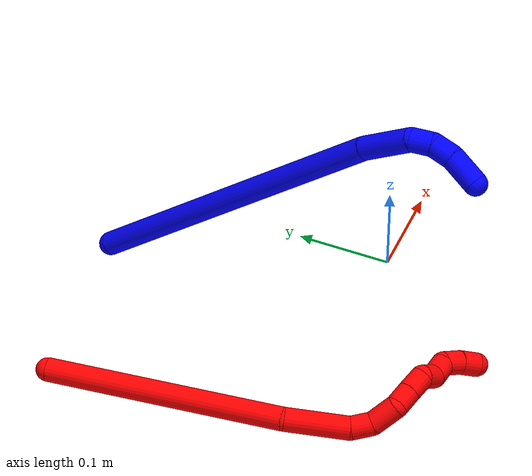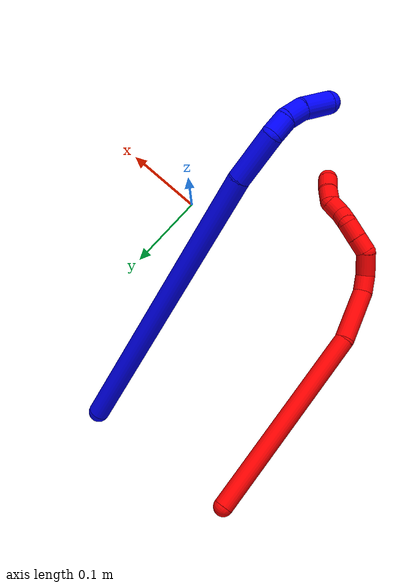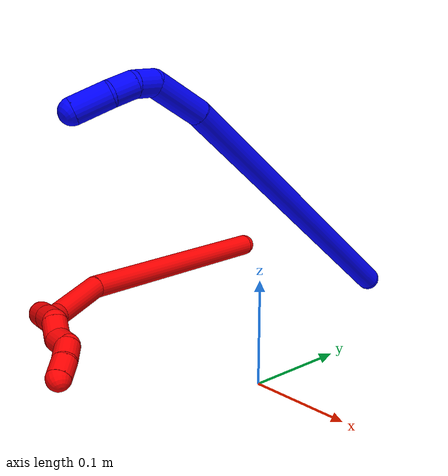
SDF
<sdf version="1.7">
 <world name="default">
  <plugin name="TubeGeneratorPlugin" filename="libtube_generator_plugin.so"/>
  <model name="photoneo_s_sensor">
   <static>1</static>
   <pose>0 0 2 1.57079 1.57079 3.14159</pose>
   <link name="link">
    <inertial><mass>0.1</mass></inertial>
    <sensor name="sensor" type="depth">
     <update_rate>30</update_rate>
     <camera>
      <horizontal_fov>1.22</horizontal_fov>
      <image><width>1920</width><height>1200</height><format>B8G8R8</format></image>
      <clip><near>0.1</near><far>4</far></clip>
      <depth_camera><output>points</output></depth_camera>
     </camera>
     <plugin name="camera_plugin" filename="libgazebo_ros_depth_camera.so">
      <baseline>0.2</baseline>
      <alwaysOn>1</alwaysOn>
      <updateRate>0.0</updateRate>
      <cameraName>camera_ir</cameraName>
      <imageTopicName>/camera/color/image_raw</imageTopicName>
      <cameraInfoTopicName>/camera/color/camera_info</cameraInfoTopicName>
      <depthImageTopicName>/camera/depth/image_raw</depthImageTopicName>
      <depthImageCameraInfoTopicName>/camera/depth/camera_info</depthImageCameraInfoTopicName>
      <pointCloudTopicName>/camera/depth/points</pointCloudTopicName>
      <frameName>fr_optical</frameName>
      <pointCloudCutoff>0.1</pointCloudCutoff>
      <pointCloudCutoffMax>2.0</pointCloudCutoffMax>
      <distortionK1>0</distortionK1>
      <distortionK2>0</distortionK2>
      <distortionK3>0</distortionK3>
      <distortionT1>0</distortionT1>
      <distortionT2>0</distortionT2>
      <CxPrime>0</CxPrime>
      <Cx>0</Cx>
      <Cy>0</Cy>
      <focalLength>0</focalLength>
      <hackBaseline>0</hackBaseline>
     </plugin>
    </sensor>
   </link>
  </model>
  <gravity>0 0 -9.8</gravity>
  <magnetic_field>6e-06 2.3e-05 -4.2e-05</magnetic_field>
  <atmosphere type="adiabatic"/>
  <physics name="default_physics" default="0" type="ode">
   <max_step_size>0.003</max_step_size>
   <real_time_factor>1</real_time_factor>
   <real_time_update_rate>1000</real_time_update_rate>
   <max_contacts>10000</max_contacts>
   <ode>
    <solver>
     <type>quick</type>
     <iters>100</iters>
     <sor>1.3</sor>
     <use_dynamic_moi_rescaling>0</use_dynamic_moi_rescaling>
    </solver>
    <constraints>
     <contact_max_correcting_vel>0</contact_max_correcting_vel>
     <contact_surface_layer>0.001</contact_surface_layer>
     <cfm>0</cfm>
     <erp>0.2</erp>
    </constraints>
   </ode>
  </physics>
  <scene><ambient>0.4 0.4 0.4 1</ambient><background>0.7 0.7 0.7 1</background><shadows>0</shadows></scene>
  <audio><device>default</device></audio>
  <spherical_coordinates>
   <surface_model>EARTH_WGS84</surface_model>
   <latitude_deg>0</latitude_deg>
   <longitude_deg>0</longitude_deg>
   <elevation>0</elevation>
   <heading_deg>0</heading_deg>
  </spherical_coordinates>
  <model name="bin">
   <static>1</static>
   <link name="bottom">
    <collision name="collision-bottom">
     <pose>0 0 -0.01 0 -0 0</pose>
     <geometry><box><size>0.8 0.6 0.02</size></box></geometry>
     <surface>
      <friction><ode><mu>100</mu><mu2>100</mu2></ode></friction>
      <contact><collide_bitmask>65535</collide_bitmask></contact>
     </surface>
    </collision>
   </link>
   <link name="west_wall">
    <collision name="collision-west_wall">
     <pose>-0.41 0 0.1 0 -0 0</pose>
     <geometry><box><size>0.02 0.6 0.2</size></box></geometry>
     <surface>
      <friction><ode><mu>100</mu><mu2>100</mu2></ode></friction>
      <contact><collide_bitmask>65535</collide_bitmask></contact>
     </surface>
    </collision>
   </link>
   <link name="east_wall">
    <collision name="collision-east_wall">
     <pose>0.41 0 0.1 0 -0 0</pose>
     <geometry><box><size>0.02 0.6 0.2</size></box></geometry>
     <surface>
      <friction><ode><mu>100</mu><mu2>100</mu2></ode></friction>
      <contact><collide_bitmask>65535</collide_bitmask></contact>
     </surface>
    </collision>
   </link>
   <link name="south_wall">
    <collision name="collision-south_wall">
     <pose>0 -0.31 0.1 0 -0 0</pose>
     <geometry><box><size>0.8 0.02 0.2</size></box></geometry>
     <surface>
      <friction><ode><mu>100</mu><mu2>100</mu2></ode></friction>
      <contact><collide_bitmask>65535</collide_bitmask></contact>
     </surface>
    </collision>
   </link>
   <link name="north_wall">
    <collision name="collision-north_wall">
     <pose>0 0.31 0.1 0 -0 0</pose>
     <geometry><box><size>0.8 0.02 0.2</size></box></geometry>
     <surface>
      <friction><ode><mu>100</mu><mu2>100</mu2></ode></friction>
      <contact><collide_bitmask>65535</collide_bitmask></contact>
     </surface>
    </collision>
   </link>
  </model>
  <model name="1">
   <static>0</static>
   <link name="1">
    <collision name="collision-cylinder-e_1_1_4">
     <pose>0.020866 -0.168051 -0.061123 1.91964 0.116163 0.165665</pose>
     <geometry><cylinder><radius>0.0125</radius><length>0.36007</length></cylinder></geometry>
     <surface>
      <friction><ode><mu>1.16</mu><mu2>1.16</mu2><slip1>0</slip1><slip2>0</slip2></ode></friction>
      <contact><ode><kp>1e+06</kp><kd>1</kd><max_vel>0</max_vel><min_depth>0.001</min_depth></ode></contact>
     </surface>
    </collision>
    <visual name="visual-cylinder-e_1_1_4">
     <pose>0.020866 -0.168051 -0.061123 1.91964 0.116163 0.165665</pose>
     <geometry><cylinder><radius>0.0125</radius><length>0.36007</length></cylinder></geometry>
     <material><ambient>0 0 1 1</ambient></material>
    </visual>
    <collision name="collision-cylinder-e_2_4_5">
     <pose>0.043336 -0.362275 -0.135834 2.04964 0.054324 0.089373</pose>
     <geometry><cylinder><radius>0.0125</radius><length>0.059068</length></cylinder></geometry>
     <surface>
      <friction><ode><mu>1.16</mu><mu2>1.16</mu2><slip1>0</slip1><slip2>0</slip2></ode></friction>
      <contact><ode><kp>1e+06</kp><kd>1</kd><max_vel>0</max_vel><min_depth>0.001</min_depth></ode></contact>
     </surface>
    </collision>
    <visual name="visual-cylinder-e_2_4_5">
     <pose>0.043336 -0.362275 -0.135834 2.04964 0.054324 0.089373</pose>
     <geometry><cylinder><radius>0.0125</radius><length>0.059068</length></cylinder></geometry>
     <material><ambient>0 0 1 1</ambient></material>
    </visual>
    <collision name="collision-cylinder-e_3_5_6">
     <pose>0.046477 -0.39452 -0.158979 2.57566 0.134891 0.456518</pose>
     <geometry><cylinder><radius>0.0125</radius><length>0.022851</length></cylinder></geometry>
     <surface>
      <friction><ode><mu>1.16</mu><mu2>1.16</mu2><slip1>0</slip1><slip2>0</slip2></ode></friction>
      <contact><ode><kp>1e+06</kp><kd>1</kd><max_vel>0</max_vel><min_depth>0.001</min_depth></ode></contact>
     </surface>
    </collision>
    <visual name="visual-cylinder-e_3_5_6">
     <pose>0.046477 -0.39452 -0.158979 2.57566 0.134891 0.456518</pose>
     <geometry><cylinder><radius>0.0125</radius><length>0.022851</length></cylinder></geometry>
     <material><ambient>0 0 1 1</ambient></material>
    </visual>
    <collision name="collision-cylinder-e_4_6_7">
     <pose>0.047297 -0.403469 -0.179704 2.88936 -0.062021 -0.479888</pose>
     <geometry><cylinder><radius>0.0125</radius><length>0.023111</length></cylinder></geometry>
     <surface>
      <friction><ode><mu>1.16</mu><mu2>1.16</mu2><slip1>0</slip1><slip2>0</slip2></ode></friction>
      <contact><ode><kp>1e+06</kp><kd>1</kd><max_vel>0</max_vel><min_depth>0.001</min_depth></ode></contact>
     </surface>
    </collision>
    <visual name="visual-cylinder-e_4_6_7">
     <pose>0.047297 -0.403469 -0.179704 2.88936 -0.062021 -0.479888</pose>
     <geometry><cylinder><radius>0.0125</radius><length>0.023111</length></cylinder></geometry>
     <material><ambient>0 0 1 1</ambient></material>
    </visual>
    <collision name="collision-cylinder-e_5_7_2">
     <pose>0.041348 -0.408434 -0.207388 3.01592 -0.304559 -2.36344</pose>
     <geometry><cylinder><radius>0.0125</radius><length>0.0349</length></cylinder></geometry>
     <surface>
      <friction><ode><mu>1.16</mu><mu2>1.16</mu2><slip1>0</slip1><slip2>0</slip2></ode></friction>
      <contact><ode><kp>1e+06</kp><kd>1</kd><max_vel>0</max_vel><min_depth>0.001</min_depth></ode></contact>
     </surface>
    </collision>
    <visual name="visual-cylinder-e_5_7_2">
     <pose>0.041348 -0.408434 -0.207388 3.01592 -0.304559 -2.36344</pose>
     <geometry><cylinder><radius>0.0125</radius><length>0.0349</length></cylinder></geometry>
     <material><ambient>0 0 1 1</ambient></material>
    </visual>
    <collision name="collision-sphere-2">
     <pose>0.036115 -0.41052 -0.223903 0 -0 0</pose>
     <geometry><sphere><radius>0.0125</radius></sphere></geometry>
     <surface>
      <friction><ode><mu>1.16</mu><mu2>1.16</mu2><slip1>0</slip1><slip2>0</slip2></ode></friction>
      <contact><ode><kp>1e+06</kp><kd>1</kd><max_vel>0</max_vel><min_depth>0.001</min_depth></ode></contact>
     </surface>
    </collision>
    <visual name="visual-sphere-2">
     <pose>0.036115 -0.41052 -0.223903 0 -0 0</pose>
     <geometry><sphere><radius>0.0125</radius></sphere></geometry>
     <material><ambient>0 0 1 1</ambient></material>
    </visual>
    <collision name="collision-sphere-7">
     <pose>0.046581 -0.406347 -0.190872 0 -0 0</pose>
     <geometry><sphere><radius>0.0125</radius></sphere></geometry>
     <surface>
      <friction><ode><mu>1.16</mu><mu2>1.16</mu2><slip1>0</slip1><slip2>0</slip2></ode></friction>
      <contact><ode><kp>1e+06</kp><kd>1</kd><max_vel>0</max_vel><min_depth>0.001</min_depth></ode></contact>
     </surface>
    </collision>
    <visual name="visual-sphere-7">
     <pose>0.046581 -0.406347 -0.190872 0 -0 0</pose>
     <geometry><sphere><radius>0.0125</radius></sphere></geometry>
     <material><ambient>0 0 1 1</ambient></material>
    </visual>
    <collision name="collision-sphere-6">
     <pose>0.048013 -0.400591 -0.168536 0 -0 0</pose>
     <geometry><sphere><radius>0.0125</radius></sphere></geometry>
     <surface>
      <friction><ode><mu>1.16</mu><mu2>1.16</mu2><slip1>0</slip1><slip2>0</slip2></ode></friction>
      <contact><ode><kp>1e+06</kp><kd>1</kd><max_vel>0</max_vel><min_depth>0.001</min_depth></ode></contact>
     </surface>
    </collision>
    <visual name="visual-sphere-6">
     <pose>0.048013 -0.400591 -0.168536 0 -0 0</pose>
     <geometry><sphere><radius>0.0125</radius></sphere></geometry>
     <material><ambient>0 0 1 1</ambient></material>
    </visual>
    <collision name="collision-sphere-5">
     <pose>0.04494 -0.388449 -0.149422 0 -0 0</pose>
     <geometry><sphere><radius>0.0125</radius></sphere></geometry>
     <surface>
      <friction><ode><mu>1.16</mu><mu2>1.16</mu2><slip1>0</slip1><slip2>0</slip2></ode></friction>
      <contact><ode><kp>1e+06</kp><kd>1</kd><max_vel>0</max_vel><min_depth>0.001</min_depth></ode></contact>
     </surface>
    </collision>
    <visual name="visual-sphere-5">
     <pose>0.04494 -0.388449 -0.149422 0 -0 0</pose>
     <geometry><sphere><radius>0.0125</radius></sphere></geometry>
     <material><ambient>0 0 1 1</ambient></material>
    </visual>
    <collision name="collision-sphere-1">
     <geometry><sphere><radius>0.0125</radius></sphere></geometry>
     <surface>
      <friction><ode><mu>1.16</mu><mu2>1.16</mu2><slip1>0</slip1><slip2>0</slip2></ode></friction>
      <contact><ode><kp>1e+06</kp><kd>1</kd><max_vel>0</max_vel><min_depth>0.001</min_depth></ode></contact>
     </surface>
    </collision>
    <visual name="visual-sphere-1">
     <geometry><sphere><radius>0.0125</radius></sphere></geometry>
     <material><ambient>0 0 1 1</ambient></material>
    </visual>
    <collision name="collision-sphere-4">
     <pose>0.041733 -0.336102 -0.122247 0 -0 0</pose>
     <geometry><sphere><radius>0.0125</radius></sphere></geometry>
     <surface>
      <friction><ode><mu>1.16</mu><mu2>1.16</mu2><slip1>0</slip1><slip2>0</slip2></ode></friction>
      <contact><ode><kp>1e+06</kp><kd>1</kd><max_vel>0</max_vel><min_depth>0.001</min_depth></ode></contact>
     </surface>
    </collision>
    <visual name="visual-sphere-4">
     <pose>0.041733 -0.336102 -0.122247 0 -0 0</pose>
     <geometry><sphere><radius>0.0125</radius></sphere></geometry>
     <material><ambient>0 0 1 1</ambient></material>
    </visual>
    <inertial>
     <pose>0.027343 -0.229006 -0.090112 0 -0 0</pose>
     <mass>0.5</mass>
     <inertia>
      <ixx>0.004485</ixx>
      <ixy>0</ixy>
      <ixz>0</ixz>
      <iyy>-0.000649</iyy>
      <iyz>0</iyz>
      <izz>0.003194</izz>
     </inertia>
    </inertial>
   </link>
   <pose>-0.098301 0.2779 0.011495 -1.04225 0.005956 -0.094429</pose>
  </model>
  <model name="2">
   <static>0</static>
   <link name="2">
    <collision name="collision-cylinder-e_1_1_4">
     <pose>0.079022 -0.089138 0.043017 1.12117 0.673769 0.432846</pose>
     <geometry><cylinder><radius>0.0125</radius><length>0.253302</length></cylinder></geometry>
     <surface>
      <friction><ode><mu>1.16</mu><mu2>1.16</mu2><slip1>0</slip1><slip2>0</slip2></ode></friction>
      <contact><ode><kp>1e+06</kp><kd>1</kd><max_vel>0</max_vel><min_depth>0.001</min_depth></ode></contact>
     </surface>
    </collision>
    <visual name="visual-cylinder-e_1_1_4">
     <pose>0.079022 -0.089138 0.043017 1.12117 0.673769 0.432846</pose>
     <geometry><cylinder><radius>0.0125</radius><length>0.253302</length></cylinder></geometry>
     <material><ambient>1 0 0 1</ambient></material>
    </visual>
    <collision name="collision-cylinder-e_2_4_5">
     <pose>0.175708 -0.199235 0.106694 0.792587 0.540554 0.230828</pose>
     <geometry><cylinder><radius>0.0125</radius><length>0.068648</length></cylinder></geometry>
     <surface>
      <friction><ode><mu>1.16</mu><mu2>1.16</mu2><slip1>0</slip1><slip2>0</slip2></ode></friction>
      <contact><ode><kp>1e+06</kp><kd>1</kd><max_vel>0</max_vel><min_depth>0.001</min_depth></ode></contact>
     </surface>
    </collision>
    <visual name="visual-cylinder-e_2_4_5">
     <pose>0.175708 -0.199235 0.106694 0.792587 0.540554 0.230828</pose>
     <geometry><cylinder><radius>0.0125</radius><length>0.068648</length></cylinder></geometry>
     <material><ambient>1 0 0 1</ambient></material>
    </visual>
    <collision name="collision-cylinder-e_3_5_6">
     <pose>0.195962 -0.229351 0.133919 0.948833 0.225989 0.116418</pose>
     <geometry><cylinder><radius>0.0125</radius><length>0.023122</length></cylinder></geometry>
     <surface>
      <friction><ode><mu>1.16</mu><mu2>1.16</mu2><slip1>0</slip1><slip2>0</slip2></ode></friction>
      <contact><ode><kp>1e+06</kp><kd>1</kd><max_vel>0</max_vel><min_depth>0.001</min_depth></ode></contact>
     </surface>
    </collision>
    <visual name="visual-cylinder-e_3_5_6">
     <pose>0.195962 -0.229351 0.133919 0.948833 0.225989 0.116418</pose>
     <geometry><cylinder><radius>0.0125</radius><length>0.023122</length></cylinder></geometry>
     <material><ambient>1 0 0 1</ambient></material>
    </visual>
    <collision name="collision-cylinder-e_4_6_7">
     <pose>0.196533 -0.252801 0.145084 1.25935 -0.133723 -0.097501</pose>
     <geometry><cylinder><radius>0.0125</radius><length>0.0303</length></cylinder></geometry>
     <surface>
      <friction><ode><mu>1.16</mu><mu2>1.16</mu2><slip1>0</slip1><slip2>0</slip2></ode></friction>
      <contact><ode><kp>1e+06</kp><kd>1</kd><max_vel>0</max_vel><min_depth>0.001</min_depth></ode></contact>
     </surface>
    </collision>
    <visual name="visual-cylinder-e_4_6_7">
     <pose>0.196533 -0.252801 0.145084 1.25935 -0.133723 -0.097501</pose>
     <geometry><cylinder><radius>0.0125</radius><length>0.0303</length></cylinder></geometry>
     <material><ambient>1 0 0 1</ambient></material>
    </visual>
    <collision name="collision-cylinder-e_5_7_8">
     <pose>0.189812 -0.272889 0.157008 0.669576 -0.466309 -0.164852</pose>
     <geometry><cylinder><radius>0.0125</radius><length>0.020909</length></cylinder></geometry>
     <surface>
      <friction><ode><mu>1.16</mu><mu2>1.16</mu2><slip1>0</slip1><slip2>0</slip2></ode></friction>
      <contact><ode><kp>1e+06</kp><kd>1</kd><max_vel>0</max_vel><min_depth>0.001</min_depth></ode></contact>
     </surface>
    </collision>
    <visual name="visual-cylinder-e_5_7_8">
     <pose>0.189812 -0.272889 0.157008 0.669576 -0.466309 -0.164852</pose>
     <geometry><cylinder><radius>0.0125</radius><length>0.020909</length></cylinder></geometry>
     <material><ambient>1 0 0 1</ambient></material>
    </visual>
    <collision name="collision-cylinder-e_6_8_9">
     <pose>0.180254 -0.284907 0.172461 0.653144 -0.443 -0.152252</pose>
     <geometry><cylinder><radius>0.0125</radius><length>0.022667</length></cylinder></geometry>
     <surface>
      <friction><ode><mu>1.16</mu><mu2>1.16</mu2><slip1>0</slip1><slip2>0</slip2></ode></friction>
      <contact><ode><kp>1e+06</kp><kd>1</kd><max_vel>0</max_vel><min_depth>0.001</min_depth></ode></contact>
     </surface>
    </collision>
    <visual name="visual-cylinder-e_6_8_9">
     <pose>0.180254 -0.284907 0.172461 0.653144 -0.443 -0.152252</pose>
     <geometry><cylinder><radius>0.0125</radius><length>0.022667</length></cylinder></geometry>
     <material><ambient>1 0 0 1</ambient></material>
    </visual>
    <collision name="collision-cylinder-e_7_9_10">
     <pose>0.17582 -0.291852 0.19064 0.071838 0.042025 0.00151</pose>
     <geometry><cylinder><radius>0.0125</radius><length>0.020163</length></cylinder></geometry>
     <surface>
      <friction><ode><mu>1.16</mu><mu2>1.16</mu2><slip1>0</slip1><slip2>0</slip2></ode></friction>
      <contact><ode><kp>1e+06</kp><kd>1</kd><max_vel>0</max_vel><min_depth>0.001</min_depth></ode></contact>
     </surface>
    </collision>
    <visual name="visual-cylinder-e_7_9_10">
     <pose>0.17582 -0.291852 0.19064 0.071838 0.042025 0.00151</pose>
     <geometry><cylinder><radius>0.0125</radius><length>0.020163</length></cylinder></geometry>
     <material><ambient>1 0 0 1</ambient></material>
    </visual>
    <collision name="collision-cylinder-e_8_10_11">
     <pose>0.171188 -0.296122 0.208944 0.405706 -0.512392 -0.107654</pose>
     <geometry><cylinder><radius>0.0125</radius><length>0.020623</length></cylinder></geometry>
     <surface>
      <friction><ode><mu>1.16</mu><mu2>1.16</mu2><slip1>0</slip1><slip2>0</slip2></ode></friction>
      <contact><ode><kp>1e+06</kp><kd>1</kd><max_vel>0</max_vel><min_depth>0.001</min_depth></ode></contact>
     </surface>
    </collision>
    <visual name="visual-cylinder-e_8_10_11">
     <pose>0.171188 -0.296122 0.208944 0.405706 -0.512392 -0.107654</pose>
     <geometry><cylinder><radius>0.0125</radius><length>0.020623</length></cylinder></geometry>
     <material><ambient>1 0 0 1</ambient></material>
    </visual>
    <collision name="collision-cylinder-e_9_11_12">
     <pose>0.167995 -0.30357 0.226268 0.406254 0.18657 0.038534</pose>
     <geometry><cylinder><radius>0.0125</radius><length>0.020089</length></cylinder></geometry>
     <surface>
      <friction><ode><mu>1.16</mu><mu2>1.16</mu2><slip1>0</slip1><slip2>0</slip2></ode></friction>
      <contact><ode><kp>1e+06</kp><kd>1</kd><max_vel>0</max_vel><min_depth>0.001</min_depth></ode></contact>
     </surface>
    </collision>
    <visual name="visual-cylinder-e_9_11_12">
     <pose>0.167995 -0.30357 0.226268 0.406254 0.18657 0.038534</pose>
     <geometry><cylinder><radius>0.0125</radius><length>0.020089</length></cylinder></geometry>
     <material><ambient>1 0 0 1</ambient></material>
    </visual>
    <collision name="collision-cylinder-e_10_12_2">
     <pose>0.173348 -0.310722 0.244225 0.350609 0.353141 0.063187</pose>
     <geometry><cylinder><radius>0.0125</radius><length>0.020177</length></cylinder></geometry>
     <surface>
      <friction><ode><mu>1.16</mu><mu2>1.16</mu2><slip1>0</slip1><slip2>0</slip2></ode></friction>
      <contact><ode><kp>1e+06</kp><kd>1</kd><max_vel>0</max_vel><min_depth>0.001</min_depth></ode></contact>
     </surface>
    </collision>
    <visual name="visual-cylinder-e_10_12_2">
     <pose>0.173348 -0.310722 0.244225 0.350609 0.353141 0.063187</pose>
     <geometry><cylinder><radius>0.0125</radius><length>0.020177</length></cylinder></geometry>
     <material><ambient>1 0 0 1</ambient></material>
    </visual>
    <collision name="collision-sphere-2">
     <pose>0.176837 -0.313973 0.253116 0 -0 0</pose>
     <geometry><sphere><radius>0.0125</radius></sphere></geometry>
     <surface>
      <friction><ode><mu>1.16</mu><mu2>1.16</mu2><slip1>0</slip1><slip2>0</slip2></ode></friction>
      <contact><ode><kp>1e+06</kp><kd>1</kd><max_vel>0</max_vel><min_depth>0.001</min_depth></ode></contact>
     </surface>
    </collision>
    <visual name="visual-sphere-2">
     <pose>0.176837 -0.313973 0.253116 0 -0 0</pose>
     <geometry><sphere><radius>0.0125</radius></sphere></geometry>
     <material><ambient>1 0 0 1</ambient></material>
    </visual>
    <collision name="collision-sphere-12">
     <pose>0.169859 -0.30747 0.235335 0 -0 0</pose>
     <geometry><sphere><radius>0.0125</radius></sphere></geometry>
     <surface>
      <friction><ode><mu>1.16</mu><mu2>1.16</mu2><slip1>0</slip1><slip2>0</slip2></ode></friction>
      <contact><ode><kp>1e+06</kp><kd>1</kd><max_vel>0</max_vel><min_depth>0.001</min_depth></ode></contact>
     </surface>
    </collision>
    <visual name="visual-sphere-12">
     <pose>0.169859 -0.30747 0.235335 0 -0 0</pose>
     <geometry><sphere><radius>0.0125</radius></sphere></geometry>
     <material><ambient>1 0 0 1</ambient></material>
    </visual>
    <collision name="collision-sphere-11">
     <pose>0.166132 -0.299669 0.217201 0 -0 0</pose>
     <geometry><sphere><radius>0.0125</radius></sphere></geometry>
     <surface>
      <friction><ode><mu>1.16</mu><mu2>1.16</mu2><slip1>0</slip1><slip2>0</slip2></ode></friction>
      <contact><ode><kp>1e+06</kp><kd>1</kd><max_vel>0</max_vel><min_depth>0.001</min_depth></ode></contact>
     </surface>
    </collision>
    <visual name="visual-sphere-11">
     <pose>0.166132 -0.299669 0.217201 0 -0 0</pose>
     <geometry><sphere><radius>0.0125</radius></sphere></geometry>
     <material><ambient>1 0 0 1</ambient></material>
    </visual>
    <collision name="collision-sphere-10">
     <pose>0.176243 -0.292575 0.200686 0 -0 0</pose>
     <geometry><sphere><radius>0.0125</radius></sphere></geometry>
     <surface>
      <friction><ode><mu>1.16</mu><mu2>1.16</mu2><slip1>0</slip1><slip2>0</slip2></ode></friction>
      <contact><ode><kp>1e+06</kp><kd>1</kd><max_vel>0</max_vel><min_depth>0.001</min_depth></ode></contact>
     </surface>
    </collision>
    <visual name="visual-sphere-10">
     <pose>0.176243 -0.292575 0.200686 0 -0 0</pose>
     <geometry><sphere><radius>0.0125</radius></sphere></geometry>
     <material><ambient>1 0 0 1</ambient></material>
    </visual>
    <collision name="collision-sphere-9">
     <pose>0.175396 -0.29113 0.180593 0 -0 0</pose>
     <geometry><sphere><radius>0.0125</radius></sphere></geometry>
     <surface>
      <friction><ode><mu>1.16</mu><mu2>1.16</mu2><slip1>0</slip1><slip2>0</slip2></ode></friction>
      <contact><ode><kp>1e+06</kp><kd>1</kd><max_vel>0</max_vel><min_depth>0.001</min_depth></ode></contact>
     </surface>
    </collision>
    <visual name="visual-sphere-9">
     <pose>0.175396 -0.29113 0.180593 0 -0 0</pose>
     <geometry><sphere><radius>0.0125</radius></sphere></geometry>
     <material><ambient>1 0 0 1</ambient></material>
    </visual>
    <collision name="collision-sphere-4">
     <pose>0.158044 -0.178275 0.086034 0 -0 0</pose>
     <geometry><sphere><radius>0.0125</radius></sphere></geometry>
     <surface>
      <friction><ode><mu>1.16</mu><mu2>1.16</mu2><slip1>0</slip1><slip2>0</slip2></ode></friction>
      <contact><ode><kp>1e+06</kp><kd>1</kd><max_vel>0</max_vel><min_depth>0.001</min_depth></ode></contact>
     </surface>
    </collision>
    <visual name="visual-sphere-4">
     <pose>0.158044 -0.178275 0.086034 0 -0 0</pose>
     <geometry><sphere><radius>0.0125</radius></sphere></geometry>
     <material><ambient>1 0 0 1</ambient></material>
    </visual>
    <collision name="collision-sphere-1">
     <geometry><sphere><radius>0.0125</radius></sphere></geometry>
     <surface>
      <friction><ode><mu>1.16</mu><mu2>1.16</mu2><slip1>0</slip1><slip2>0</slip2></ode></friction>
      <contact><ode><kp>1e+06</kp><kd>1</kd><max_vel>0</max_vel><min_depth>0.001</min_depth></ode></contact>
     </surface>
    </collision>
    <visual name="visual-sphere-1">
     <geometry><sphere><radius>0.0125</radius></sphere></geometry>
     <material><ambient>1 0 0 1</ambient></material>
    </visual>
    <collision name="collision-sphere-8">
     <pose>0.185112 -0.278685 0.16433 0 -0 0</pose>
     <geometry><sphere><radius>0.0125</radius></sphere></geometry>
     <surface>
      <friction><ode><mu>1.16</mu><mu2>1.16</mu2><slip1>0</slip1><slip2>0</slip2></ode></friction>
      <contact><ode><kp>1e+06</kp><kd>1</kd><max_vel>0</max_vel><min_depth>0.001</min_depth></ode></contact>
     </surface>
    </collision>
    <visual name="visual-sphere-8">
     <pose>0.185112 -0.278685 0.16433 0 -0 0</pose>
     <geometry><sphere><radius>0.0125</radius></sphere></geometry>
     <material><ambient>1 0 0 1</ambient></material>
    </visual>
    <collision name="collision-sphere-5">
     <pose>0.193371 -0.220194 0.127354 0 -0 0</pose>
     <geometry><sphere><radius>0.0125</radius></sphere></geometry>
     <surface>
      <friction><ode><mu>1.16</mu><mu2>1.16</mu2><slip1>0</slip1><slip2>0</slip2></ode></friction>
      <contact><ode><kp>1e+06</kp><kd>1</kd><max_vel>0</max_vel><min_depth>0.001</min_depth></ode></contact>
     </surface>
    </collision>
    <visual name="visual-sphere-5">
     <pose>0.193371 -0.220194 0.127354 0 -0 0</pose>
     <geometry><sphere><radius>0.0125</radius></sphere></geometry>
     <material><ambient>1 0 0 1</ambient></material>
    </visual>
    <collision name="collision-sphere-6">
     <pose>0.198552 -0.238509 0.140483 0 -0 0</pose>
     <geometry><sphere><radius>0.0125</radius></sphere></geometry>
     <surface>
      <friction><ode><mu>1.16</mu><mu2>1.16</mu2><slip1>0</slip1><slip2>0</slip2></ode></friction>
      <contact><ode><kp>1e+06</kp><kd>1</kd><max_vel>0</max_vel><min_depth>0.001</min_depth></ode></contact>
     </surface>
    </collision>
    <visual name="visual-sphere-6">
     <pose>0.198552 -0.238509 0.140483 0 -0 0</pose>
     <geometry><sphere><radius>0.0125</radius></sphere></geometry>
     <material><ambient>1 0 0 1</ambient></material>
    </visual>
    <collision name="collision-sphere-7">
     <pose>0.194513 -0.267093 0.149685 0 -0 0</pose>
     <geometry><sphere><radius>0.0125</radius></sphere></geometry>
     <surface>
      <friction><ode><mu>1.16</mu><mu2>1.16</mu2><slip1>0</slip1><slip2>0</slip2></ode></friction>
      <contact><ode><kp>1e+06</kp><kd>1</kd><max_vel>0</max_vel><min_depth>0.001</min_depth></ode></contact>
     </surface>
    </collision>
    <visual name="visual-sphere-7">
     <pose>0.194513 -0.267093 0.149685 0 -0 0</pose>
     <geometry><sphere><radius>0.0125</radius></sphere></geometry>
     <material><ambient>1 0 0 1</ambient></material>
    </visual>
    <inertial>
     <pose>0.129134 -0.171484 0.101063 0 -0 0</pose>
     <mass>0.5</mass>
     <inertia>
      <ixx>0.001473</ixx>
      <ixy>0</ixy>
      <ixz>0</ixz>
      <iyy>0.001321</iyy>
      <iyz>0</iyz>
      <izz>0.000141</izz>
     </inertia>
    </inertial>
   </link>
   <pose>-0.2898 0.261604 0.012423 -2.26286 0.429877 -2.27008</pose>
  </model>
 </world>
</sdf>
